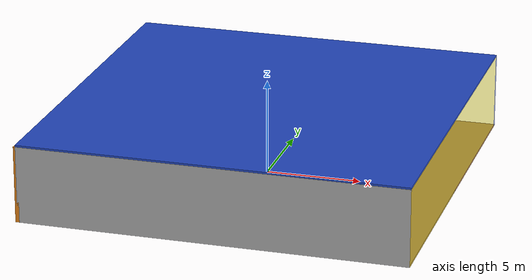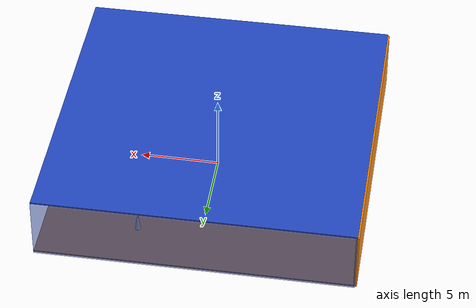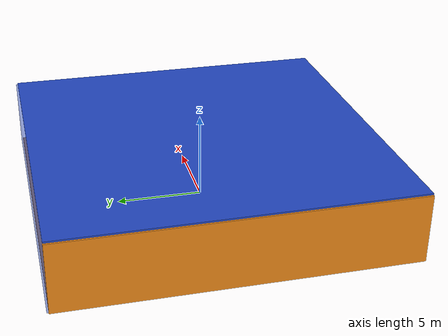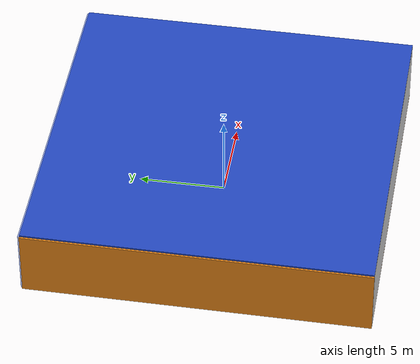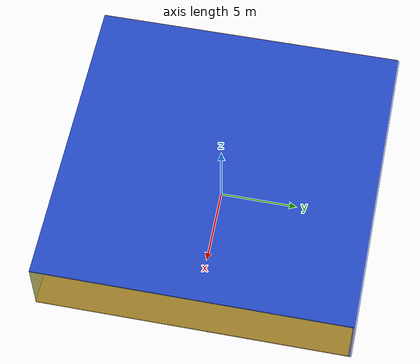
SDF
<sdf version="1.4">
 <world name="default">
  <physics type="ode">
   <max_step_size>0.001</max_step_size>
   <real_time_factor>1</real_time_factor>
   <real_time_update_rate>1000</real_time_update_rate>
   <gravity>0 0 -9.8</gravity>
  </physics>
  <scene><ambient>0.4 0.4 0.4 1</ambient><background>0.7 0.7 0.7 1</background><shadows>1</shadows></scene>
  <model name="Surrounding">
   <static>1</static>
   <link name="Ceiling">
    <collision name="Ceiling_Collision"><geometry><box><size>20 20 0.1</size></box></geometry></collision>
    <visual name="Ceiling_Visual">
     <geometry><box><size>20 20 0.1</size></box></geometry>
     <material>
      <script><uri>file://media/materials/scripts/gazebo.material</uri><name>Gazebo/BlueGlow</name></script>
     </material>
    </visual>
    <pose>0 0 4.05 0 0 0</pose>
   </link>
   <link name="Wall_South">
    <collision name="Wall_South_Collision">
     <geometry><box><size>20 0 4</size></box></geometry>
     <pose>0 0 2 0 -0 0</pose>
    </collision>
    <visual name="Wall_South_Visual">
     <pose>0 0 2 0 -0 0</pose>
     <geometry><box><size>20 0 4</size></box></geometry>
     <material>
      <script><uri>file://media/materials/scripts/gazebo.material</uri><name>Gazebo/LightOff</name></script>
     </material>
    </visual>
    <velocity_decay><linear>0</linear><angular>0</angular></velocity_decay>
    <pose>0 -10 0 0 -0 0</pose>
   </link>
   <link name="Wall_East">
    <collision name="Wall_21_Collision">
     <geometry><box><size>20 0 4</size></box></geometry>
     <pose>0 0 2 0 -0 0</pose>
    </collision>
    <visual name="Wall_21_Visual">
     <pose>0 0 2 0 -0 0</pose>
     <geometry><box><size>20 0 4</size></box></geometry>
     <material>
      <script>
       <uri>file://media/materials/scripts/gazebo.material</uri>
       <name>Gazebo/YellowTransparent</name>
      </script>
     </material>
    </visual>
    <velocity_decay><linear>0</linear><angular>0</angular></velocity_decay>
    <pose>10 0 0 0 -0 1.5708</pose>
   </link>
   <link name="Wall_North">
    <collision name="Wall_22_Collision">
     <geometry><box><size>20 0.2 4</size></box></geometry>
     <pose>0 0 2 0 -0 0</pose>
    </collision>
    <visual name="Wall_22_Visual">
     <pose>0 0 2 0 -0 0</pose>
     <geometry><box><size>20 0.2 4</size></box></geometry>
     <material>
      <script><uri>file://media/materials/scripts/gazebo.material</uri><name>Gazebo/BlueTransparent</name></script>
     </material>
    </visual>
    <velocity_decay><linear>0</linear><angular>0</angular></velocity_decay>
    <pose>0 10 0 0 -0 0</pose>
   </link>
   <link name="Wall_West">
    <collision name="Wall_23_Collision">
     <geometry><box><size>20 0.2 4</size></box></geometry>
     <pose>0 0 2 0 -0 0</pose>
    </collision>
    <visual name="Wall_23_Visual">
     <pose>0 0 2 0 -0 0</pose>
     <geometry><box><size>20 0.2 4</size></box></geometry>
     <material>
      <script><uri>file://media/materials/scripts/gazebo.material</uri><name>Gazebo/Orange</name></script>
     </material>
    </visual>
    <velocity_decay><linear>0</linear><angular>0</angular></velocity_decay>
    <pose>-10 0 0 0 0 -1.5708</pose>
   </link>
   <link name="Ground_link">
    <collision name="collision">
     <pose>0 0 .05 0 -0 0</pose>
     <geometry><box><size>20 20 0.1</size></box></geometry>
    </collision>
    <visual name="visual">
     <pose>0 0 .05 0 -0 0</pose>
     <geometry><box><size>20 20 0.1</size></box></geometry>
     <material>
      <script><uri>file://media/materials/scripts/gazebo.material</uri><name>Gazebo/WoodFloor</name></script>
     </material>
    </visual>
   </link>
   <static>1</static>
  </model>
  <spherical_coordinates>
   <surface_model>EARTH_WGS84</surface_model>
   <latitude_deg>0</latitude_deg>
   <longitude_deg>0</longitude_deg>
   <elevation>0</elevation>
   <heading_deg>0</heading_deg>
  </spherical_coordinates>
  <light name="lightball_0" type="diffuse">
   <diffuse>0.8 0.8 0.8 1</diffuse>
   <specular>0.2 0.2 0.2 1</specular>
   <attenuation>
    <range>100</range>
    <constant>0.7</constant>
    <linear>0.01</linear>
    <quadratic>0.001</quadratic>
   </attenuation>
   <direction>-0.5 0.1 -0.9</direction>
   <pose>2.2210112108 -6.9579605272 2.94565913701 0 0 0</pose>
  </light>
  <light name="lightball_1" type="diffuse">
   <diffuse>0.8 0.8 0.8 1</diffuse>
   <specular>0.2 0.2 0.2 1</specular>
   <attenuation>
    <range>100</range>
    <constant>0.7</constant>
    <linear>0.01</linear>
    <quadratic>0.001</quadratic>
   </attenuation>
   <direction>-0.5 0.1 -0.9</direction>
   <pose>-2.72335928406 9.19418524409 0.51605968577 0 0 0</pose>
  </light>
  <light name="lightball_2" type="diffuse">
   <diffuse>0.8 0.8 0.8 1</diffuse>
   <specular>0.2 0.2 0.2 1</specular>
   <attenuation>
    <range>100</range>
    <constant>0.7</constant>
    <linear>0.01</linear>
    <quadratic>0.001</quadratic>
   </attenuation>
   <direction>-0.5 0.1 -0.9</direction>
   <pose>6.53624908401 9.5308510524 3.60017305923 0 0 0</pose>
  </light>
  <light name="lightball_3" type="diffuse">
   <diffuse>0.8 0.8 0.8 1</diffuse>
   <specular>0.2 0.2 0.2 1</specular>
   <attenuation>
    <range>100</range>
    <constant>0.7</constant>
    <linear>0.01</linear>
    <quadratic>0.001</quadratic>
   </attenuation>
   <direction>-0.5 0.1 -0.9</direction>
   <pose>-7.87873516233 -3.14646771255 3.76665284527 0 0 0</pose>
  </light>
  <light name="lightball_4" type="diffuse">
   <diffuse>0.8 0.8 0.8 1</diffuse>
   <specular>0.2 0.2 0.2 1</specular>
   <attenuation>
    <range>100</range>
    <constant>0.7</constant>
    <linear>0.01</linear>
    <quadratic>0.001</quadratic>
   </attenuation>
   <direction>-0.5 0.1 -0.9</direction>
   <pose>-6.92450185804 1.60267967368 0.561064788575 0 0 0</pose>
  </light>
  <light name="lightball_5" type="diffuse">
   <diffuse>0.8 0.8 0.8 1</diffuse>
   <specular>0.2 0.2 0.2 1</specular>
   <attenuation>
    <range>100</range>
    <constant>0.7</constant>
    <linear>0.01</linear>
    <quadratic>0.001</quadratic>
   </attenuation>
   <direction>-0.5 0.1 -0.9</direction>
   <pose>-7.40162793164 4.61723453145 1.99692505196 0 0 0</pose>
  </light>
  <light name="lightball_6" type="diffuse">
   <diffuse>0.8 0.8 0.8 1</diffuse>
   <specular>0.2 0.2 0.2 1</specular>
   <attenuation>
    <range>100</range>
    <constant>0.7</constant>
    <linear>0.01</linear>
    <quadratic>0.001</quadratic>
   </attenuation>
   <direction>-0.5 0.1 -0.9</direction>
   <pose>-2.85030535276 8.35238859565 1.49540709593 0 0 0</pose>
  </light>
  <light name="lightball_7" type="diffuse">
   <diffuse>0.8 0.8 0.8 1</diffuse>
   <specular>0.2 0.2 0.2 1</specular>
   <attenuation>
    <range>100</range>
    <constant>0.7</constant>
    <linear>0.01</linear>
    <quadratic>0.001</quadratic>
   </attenuation>
   <direction>-0.5 0.1 -0.9</direction>
   <pose>-8.5718449282 -8.83393142567 1.00202970055 0 0 0</pose>
  </light>
  <light name="lightball_8" type="diffuse">
   <diffuse>0.8 0.8 0.8 1</diffuse>
   <specular>0.2 0.2 0.2 1</specular>
   <attenuation>
    <range>100</range>
    <constant>0.7</constant>
    <linear>0.01</linear>
    <quadratic>0.001</quadratic>
   </attenuation>
   <direction>-0.5 0.1 -0.9</direction>
   <pose>-4.04615959717 8.90717901057 2.78245112813 0 0 0</pose>
  </light>
  <light name="lightball_9" type="diffuse">
   <diffuse>0.8 0.8 0.8 1</diffuse>
   <specular>0.2 0.2 0.2 1</specular>
   <attenuation>
    <range>100</range>
    <constant>0.7</constant>
    <linear>0.01</linear>
    <quadratic>0.001</quadratic>
   </attenuation>
   <direction>-0.5 0.1 -0.9</direction>
   <pose>-1.43263803408 -1.23861241309 3.41130252782 0 0 0</pose>
  </light>
  <light name="lightball_10" type="diffuse">
   <diffuse>0.8 0.8 0.8 1</diffuse>
   <specular>0.2 0.2 0.2 1</specular>
   <attenuation>
    <range>100</range>
    <constant>0.7</constant>
    <linear>0.01</linear>
    <quadratic>0.001</quadratic>
   </attenuation>
   <direction>-0.5 0.1 -0.9</direction>
   <pose>5.59992011114 -6.00332393024 1.37477430475 0 0 0</pose>
  </light>
  <include><uri>model://cabinet</uri><pose>0.536489784035 -8.45863794717 0 0 0 3.11170140537</pose></include>
  <include>
   <uri>model://construction_cone</uri>
   <pose>2.31972335213 -1.03096461201 0 0 0 2.4723473369</pose>
  </include>
  <include><uri>model://cabinet</uri><pose>0.727311950347 5.19703085297 0 0 0 2.71989476214</pose></include>
  <include>
   <uri>model://robocup_3Dsim_goal</uri>
   <pose>3.76411746814 -0.450187824616 0 0 0 2.95642256638</pose>
  </include>
  <include>
   <uri>model://construction_cone</uri>
   <pose>3.98442415934 7.0512245324 0 0 0 2.76068150891</pose>
  </include>
 </world>
</sdf>

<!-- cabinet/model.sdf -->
<sdf version="1.5">
  <model name="cabinet">
    <static>true</static>
    <link name="cabinet_bottom_plate">
      <inertial>
        <pose>0 0 -1 0 0 0</pose>
        <inertia>
          <ixx>2.050000</ixx>
          <ixy>0</ixy>
          <ixz>0</ixz>
          <iyy>2.050000</iyy>
          <iyz>0</iyz>
          <izz>2.050000</izz>
        </inertia>
        <mass>25.000000</mass>
      </inertial>
      <collision name="cabinet_bottom_plate_geom">
        <pose>0 0 0.010000 0 0 0</pose>
        <geometry>
          <box>
            <size>0.450000 0.450000 0.020000</size>
          </box>
        </geometry>
      </collision>
      <visual name="cabinet_bottom_plate_geom_visual">
        <pose>0 0 0.010000 0 0 0</pose>
        <geometry>
          <box>
            <size>0.450000 0.450000 0.020000</size>
          </box>
        </geometry>
        <material>
          <script>
            <uri>model://media/materials/scripts/gazebo.material</uri>
            <name>Gazebo/Wood</name>
          </script>
        </material>
      </visual>
      <collision name="cabinet_bottom_plate_geom_cabinet_back_plate">
        <pose>0.235000 0 0.510000 0 0 0</pose>
        <geometry>
          <box>
            <size>0.020000 0.450000 1.020000</size>
          </box>
        </geometry>
      </collision>
      <visual name="cabinet_bottom_plate_geom_cabinet_back_plate_visual">
        <pose>0.235000 0 0.510000 0 0 0</pose>
        <geometry>
          <box>
            <size>0.020000 0.450000 1.020000</size>
          </box>
        </geometry>
        <material>
          <script>
            <uri>model://media/materials/scripts/gazebo.material</uri>
            <name>Gazebo/Wood</name>
          </script>
        </material>
      </visual>
      <collision name="cabinet_bottom_plate_geom_cabinet_left_plate">
        <pose>0 0.235000 0.510000 0 0 0</pose>
        <geometry>
          <box>
            <size>0.450000 0.020000 1.020000</size>
          </box>
        </geometry>
      </collision>
      <visual name="cabinet_bottom_plate_geom_cabinet_left_plate_visual">
        <pose>0 0.235000 0.510000 0 0 0</pose>
        <geometry>
          <box>
            <size>0.450000 0.020000 1.020000</size>
          </box>
        </geometry>
        <material>
          <script>
            <uri>model://media/materials/scripts/gazebo.material</uri>
            <name>Gazebo/Wood</name>
          </script>
        </material>
      </visual>
      <collision name="cabinet_bottom_plate_geom_cabinet_middle_plate">
        <pose>0 0 0.510000 0 0 0</pose>
        <geometry>
          <box>
            <size>0.450000 0.450000 0.020000</size>
          </box>
        </geometry>
      </collision>
      <visual name="cabinet_bottom_plate_geom_cabinet_middle_plate_visual">
        <pose>0 0 0.510000 0 0 0</pose>
        <geometry>
          <box>
            <size>0.450000 0.450000 0.020000</size>
          </box>
        </geometry>
        <material>
          <script>
            <uri>model://media/materials/scripts/gazebo.material</uri>
            <name>Gazebo/Wood</name>
          </script>
        </material>
      </visual>
      <collision name="cabinet_bottom_plate_geom_cabinet_right_plate">
        <pose>0 -0.235000 0.510000 0 0 0</pose>
        <geometry>
          <box>
            <size>0.450000 0.020000 1.020000</size>
          </box>
        </geometry>
      </collision>
      <visual name="cabinet_bottom_plate_geom_cabinet_right_plate_visual">
        <pose>0 -0.235000 0.510000 0 0 0</pose>
        <geometry>
          <box>
            <size>0.450000 0.020000 1.020000</size>
          </box>
        </geometry>
        <material>
          <script>
            <uri>model://media/materials/scripts/gazebo.material</uri>
            <name>Gazebo/Wood</name>
          </script>
        </material>
      </visual>
      <collision name="cabinet_bottom_plate_geom_cabinet_top_plate">
        <pose>0 0 1.010000 0 0 0</pose>
        <geometry>
          <box>
            <size>0.450000 0.450000 0.020000</size>
          </box>
        </geometry>
      </collision>
      <visual name="cabinet_bottom_plate_geom_cabinet_top_plate_visual">
        <pose>0 0 1.010000 0 0 0</pose>
        <geometry>
          <box>
            <size>0.450000 0.450000 0.020000</size>
          </box>
        </geometry>
        <material>
          <script>
            <uri>model://media/materials/scripts/gazebo.material</uri>
            <name>Gazebo/Wood</name>
          </script>
        </material>
      </visual>
    </link>
  </model>
</sdf>

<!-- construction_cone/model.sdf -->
<sdf version="1.5">
  <model name="Construction Cone">
    <link name="link">
      <collision name="collision">
        <geometry>
          <mesh>
            <scale>10 10 10</scale>
            <uri>file://isr-testbed/construction_cone/meshes/construction_cone.dae</uri>
          </mesh>
        </geometry>
      </collision>
      <visual name="visual">
        <geometry>
          <mesh>
            <scale>10 10 10</scale>
            <uri>file://isr-testbed/construction_cone/meshes/construction_cone.dae</uri>
          </mesh>
        </geometry>
      </visual>
    </link>
  </model>
</sdf>

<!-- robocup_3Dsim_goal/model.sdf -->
<sdf version="1.5">
  <model name="robocup_3d_goal">
    <static>true</static>
    <link name="left_post">
      <pose>0 1.05 0.45 0 0 0</pose>
      <collision name="collision">
        <geometry>
          <cylinder>
            <radius>0.05</radius>
            <length>0.9</length>
          </cylinder>
        </geometry>
      </collision>
      <visual name="visual">
        <geometry>
          <cylinder>
            <radius>0.05</radius>
            <length>0.9</length>
          </cylinder>
        </geometry>
        <material>
          <script>
            <uri>file://media/materials/scripts/gazebo.material</uri>
            <name>Gazebo/ZincYellow</name>
          </script>
        </material>
      </visual>
    </link>
    <link name="left_support_horiz_lower">
      <pose>0.30 1.05 0.01 0 0 0</pose>
      <collision name="collision">
        <geometry>
          <box>
            <size>0.50 0.02 0.02</size>
          </box>
        </geometry>
      </collision>
      <visual name="visual">
        <geometry>
          <box>
            <size>0.50 0.02 0.02</size>
          </box>
        </geometry>
        <material>
          <script>
            <uri>file://media/materials/scripts/gazebo.material</uri>
            <name>Gazebo/White</name>
          </script>
        </material>
      </visual>
    </link>
    <link name="left_support_horiz_upper">
      <pose>0.30 1.05 0.79 0 0 0</pose>
      <collision name="collision">
        <geometry>
          <box>
            <size>0.50 0.02 0.02</size>
          </box>
        </geometry>
      </collision>
      <visual name="visual">
        <geometry>
          <box>
            <size>0.50 0.02 0.02</size>
          </box>
        </geometry>
        <material>
          <script>
            <uri>file://media/materials/scripts/gazebo.material</uri>
            <name>Gazebo/White</name>
          </script>
        </material>
      </visual>
    </link>
    <link name="left_support_vertical">
      <pose>0.56 1.05 0.4 0 1.5708 0</pose>
      <collision name="collision">
        <geometry>
          <box>
            <size>0.80 0.02 0.02</size>
          </box>
        </geometry>
      </collision>
      <visual name="visual">
        <geometry>
          <box>
            <size>0.80 0.02 0.02</size>
          </box>
        </geometry>
        <material>
          <script>
            <uri>file://media/materials/scripts/gazebo.material</uri>
            <name>Gazebo/White</name>
          </script>
        </material>
      </visual>
    </link>
    <link name="right_support_horiz_lower">
      <pose>0.30 -1.05 0.01 0 0 0</pose>
      <collision name="collision">
        <geometry>
          <box>
            <size>0.50 0.02 0.02</size>
          </box>
        </geometry>
      </collision>
      <visual name="visual">
        <geometry>
          <box>
            <size>0.50 0.02 0.02</size>
          </box>
        </geometry>
        <material>
          <script>
            <uri>file://media/materials/scripts/gazebo.material</uri>
            <name>Gazebo/White</name>
          </script>
        </material>
      </visual>
    </link>
    <link name="right_support_horiz_upper">
      <pose>0.30 -1.05 0.79 0 0 0</pose>
      <collision name="collision">
        <geometry>
          <box>
            <size>0.50 0.02 0.02</size>
          </box>
        </geometry>
      </collision>
      <visual name="visual">
        <geometry>
          <box>
            <size>0.50 0.02 0.02</size>
          </box>
        </geometry>
        <material>
          <script>
            <uri>file://media/materials/scripts/gazebo.material</uri>
            <name>Gazebo/White</name>
          </script>
        </material>
      </visual>
    </link>
    <link name="right_support_vertical">
      <pose>0.56 -1.05 0.4 0 1.5708 0</pose>
      <collision name="collision">
        <geometry>
          <box>
            <size>0.80 0.02 0.02</size>
          </box>
        </geometry>
      </collision>
      <visual name="visual">
        <geometry>
          <box>
            <size>0.80 0.02 0.02</size>
          </box>
        </geometry>
        <material>
          <script>
            <uri>file://media/materials/scripts/gazebo.material</uri>
            <name>Gazebo/White</name>
          </script>
        </material>
      </visual>
    </link>
    <link name="center_support_horiz_lower">
      <pose>0.56 0 0.01 0 1.5708 0</pose>
      <collision name="collision">
        <geometry>
          <box>
            <size>0.02 2.08 0.02</size>
          </box>
        </geometry>
      </collision>
      <visual name="visual">
        <geometry>
          <box>
            <size>0.02 2.08 0.02</size>
          </box>
        </geometry>
        <material>
          <script>
            <uri>file://media/materials/scripts/gazebo.material</uri>
            <name>Gazebo/White</name>
          </script>
        </material>
      </visual>
    </link>
    <link name="center_support_horiz_upper">
      <pose>0.56 0 0.79 0 1.5708 0</pose>
      <collision name="collision">
        <geometry>
          <box>
            <size>0.02 2.08 0.02</size>
          </box>
        </geometry>
      </collision>
      <visual name="visual">
        <geometry>
          <box>
            <size>0.02 2.08 0.02</size>
          </box>
        </geometry>
        <material>
          <script>
            <uri>file://media/materials/scripts/gazebo.material</uri>
            <name>Gazebo/White</name>
          </script>
        </material>
      </visual>
    </link>
    <link name="right_post">
      <pose>0 -1.05 0.45 0 0 0</pose>
      <collision name="collision">
        <geometry>
          <cylinder>
            <radius>0.05</radius>
            <length>0.9</length>
          </cylinder>
        </geometry>
      </collision>
      <visual name="visual">
        <geometry>
          <cylinder>
            <radius>0.05</radius>
            <length>0.9</length>
          </cylinder>
        </geometry>
        <material>
          <script>
            <uri>file://media/materials/scripts/gazebo.material</uri>
            <name>Gazebo/ZincYellow</name>
          </script>
        </material>
      </visual>
    </link>
    <link name="crossbar">
      <pose>0 0 0.85 1.57 1.57 0</pose>
      <collision name="collision">
        <geometry>
          <cylinder>
            <radius>0.05</radius>
            <length>2.0</length>
          </cylinder>
        </geometry>
      </collision>
      <visual name="visual">
        <geometry>
          <cylinder>
            <radius>0.05</radius>
            <length>2.0</length>
          </cylinder>
        </geometry>
        <material>
          <script>
            <uri>file://media/materials/scripts/gazebo.material</uri>
            <name>Gazebo/ZincYellow</name>
          </script>
        </material>
      </visual>
    </link>
    <link name="center_net">
      <pose>0.56 0 0.40 0 0 0</pose>
      <collision name="collision">
        <geometry>
          <box>
            <size>0.01 2.1 0.80</size>
          </box>
        </geometry>
      </collision>
      <visual name="visual">
        <geometry>
          <box>
            <size>0.01 2.1 0.80</size>
          </box>
        </geometry>
        <material>
          <script>
            <uri>model://../model_source/models/robocup09_spl_field/materials/scripts/</uri>
            <uri>model://../model_source/models/robocup09_spl_field/materials/textures/</uri>
            <name>RoboCup/Net</name>
          </script>
        </material>
      </visual>
    </link>
    <link name="left_net">
      <pose>0.30 1.05 0.40 0 0 0</pose>
      <collision name="collision">
        <geometry>
          <box>
            <size>0.50 0.01 0.76</size>
          </box>
        </geometry>
      </collision>
      <visual name="visual">
        <geometry>
          <box>
            <size>0.50 0.01 0.76</size>
          </box>
        </geometry>
        <material>
          <script>
            <uri>model://../model_source/models/robocup09_spl_field/materials/scripts/</uri>
            <uri>model://../model_source/models/robocup09_spl_field/materials/textures/</uri>
            <name>RoboCup/Net</name>
          </script>
        </material>
      </visual>
    </link>
    <link name="right_net">
      <pose>0.30 -1.05 0.40 0 0 0</pose>
      <collision name="collision">
        <geometry>
          <box>
            <size>0.50 0.01 0.76</size>
          </box>
        </geometry>
      </collision>
      <visual name="visual">
        <geometry>
          <box>
            <size>0.50 0.01 0.76</size>
          </box>
        </geometry>
        <material>
          <script>
            <uri>model://../model_source/models/robocup09_spl_field/materials/scripts/</uri>
            <uri>model://../model_source/models/robocup09_spl_field/materials/textures/</uri>
            <name>RoboCup/Net</name>
          </script>
        </material>
      </visual>
    </link>
  </model>
</sdf>
